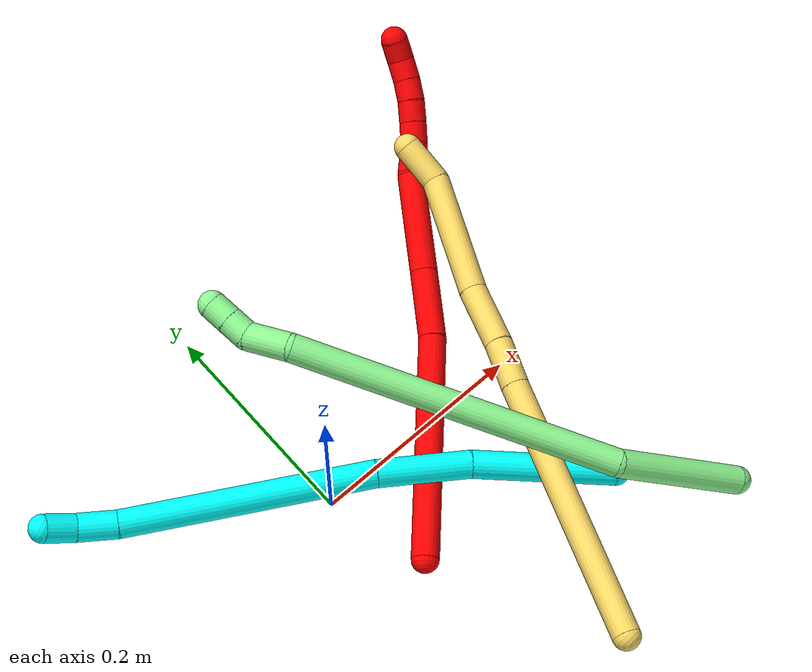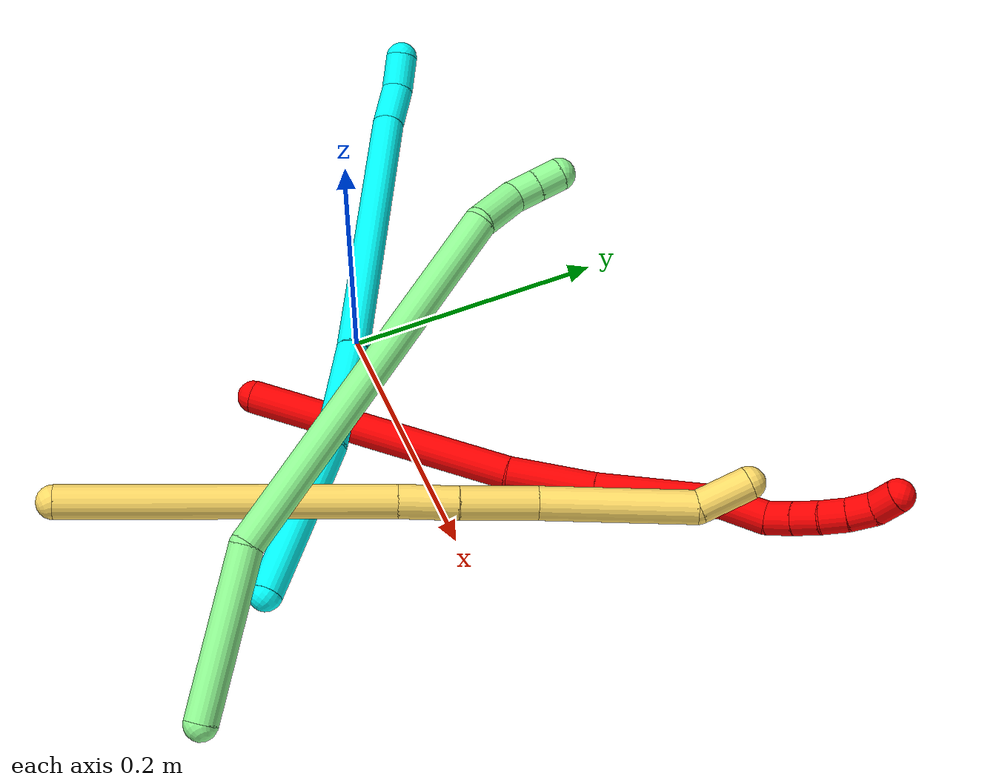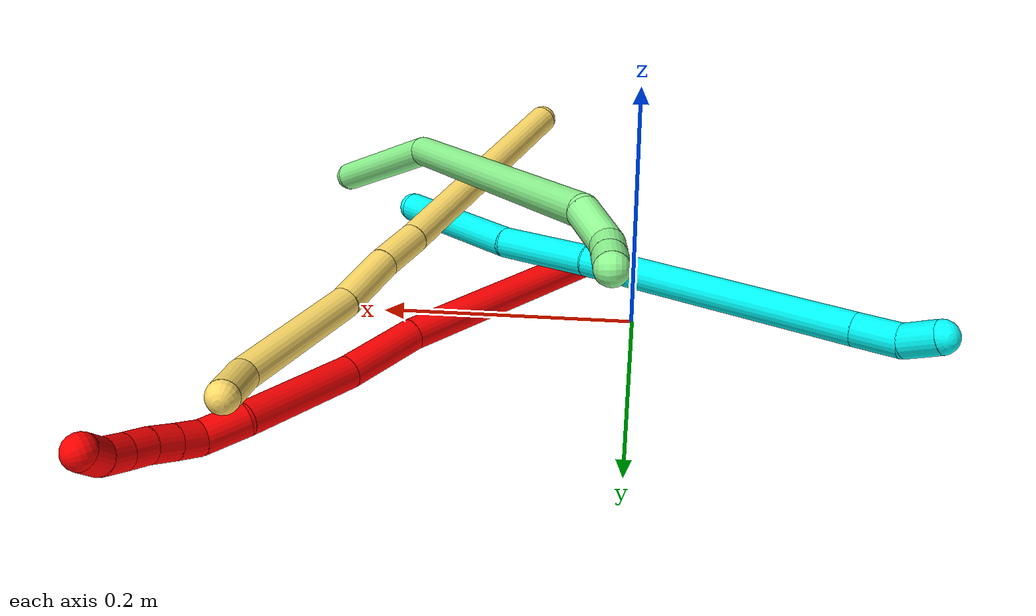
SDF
<sdf version="1.7">
 <world name="default">
  <model name="2">
   <static>0</static>
   <link name="2">
    <collision name="collision-cylinder-e_1_1_4">
     <pose>0.000431 0.000255 0.102914 -0.002482 0.004192 -5e-06</pose>
     <geometry><cylinder><radius>0.0125</radius><length>0.205831</length></cylinder></geometry>
     <surface>
      <friction><ode><mu>1.16</mu><mu2>1.16</mu2><slip1>0</slip1><slip2>0</slip2></ode></friction>
      <contact><ode><kp>1e+06</kp><kd>1</kd><max_vel>0</max_vel><min_depth>0.001</min_depth></ode></contact>
     </surface>
    </collision>
    <visual name="visual-cylinder-e_1_1_4">
     <pose>0.000431 0.000255 0.102914 -0.002482 0.004192 -5e-06</pose>
     <geometry><cylinder><radius>0.0125</radius><length>0.205831</length></cylinder></geometry>
     <material><ambient>1 0 0 1</ambient></material>
    </visual>
    <collision name="collision-cylinder-e_2_4_5">
     <pose>0.005104 0.003269 0.238259 -0.084839 0.129572 -0.005507</pose>
     <geometry><cylinder><radius>0.0125</radius><length>0.065646</length></cylinder></geometry>
     <surface>
      <friction><ode><mu>1.16</mu><mu2>1.16</mu2><slip1>0</slip1><slip2>0</slip2></ode></friction>
      <contact><ode><kp>1e+06</kp><kd>1</kd><max_vel>0</max_vel><min_depth>0.001</min_depth></ode></contact>
     </surface>
    </collision>
    <visual name="visual-cylinder-e_2_4_5">
     <pose>0.005104 0.003269 0.238259 -0.084839 0.129572 -0.005507</pose>
     <geometry><cylinder><radius>0.0125</radius><length>0.065646</length></cylinder></geometry>
     <material><ambient>1 0 0 1</ambient></material>
    </visual>
    <collision name="collision-cylinder-e_3_5_6">
     <pose>0.011664 0.014586 0.317357 -0.181391 0.048834 -0.004442</pose>
     <geometry><cylinder><radius>0.0125</radius><length>0.095005</length></cylinder></geometry>
     <surface>
      <friction><ode><mu>1.16</mu><mu2>1.16</mu2><slip1>0</slip1><slip2>0</slip2></ode></friction>
      <contact><ode><kp>1e+06</kp><kd>1</kd><max_vel>0</max_vel><min_depth>0.001</min_depth></ode></contact>
     </surface>
    </collision>
    <visual name="visual-cylinder-e_3_5_6">
     <pose>0.011664 0.014586 0.317357 -0.181391 0.048834 -0.004442</pose>
     <geometry><cylinder><radius>0.0125</radius><length>0.095005</length></cylinder></geometry>
     <material><ambient>1 0 0 1</ambient></material>
    </visual>
    <collision name="collision-cylinder-e_4_6_7">
     <pose>0.013732 0.022293 0.380685 0.051128 -0.015042 -0.000385</pose>
     <geometry><cylinder><radius>0.0125</radius><length>0.033368</length></cylinder></geometry>
     <surface>
      <friction><ode><mu>1.16</mu><mu2>1.16</mu2><slip1>0</slip1><slip2>0</slip2></ode></friction>
      <contact><ode><kp>1e+06</kp><kd>1</kd><max_vel>0</max_vel><min_depth>0.001</min_depth></ode></contact>
     </surface>
    </collision>
    <visual name="visual-cylinder-e_4_6_7">
     <pose>0.013732 0.022293 0.380685 0.051128 -0.015042 -0.000385</pose>
     <geometry><cylinder><radius>0.0125</radius><length>0.033368</length></cylinder></geometry>
     <material><ambient>1 0 0 1</ambient></material>
    </visual>
    <collision name="collision-cylinder-e_5_7_8">
     <pose>0.011833 0.024399 0.406795 -0.303457 -0.16491 0.025271</pose>
     <geometry><cylinder><radius>0.0125</radius><length>0.020077</length></cylinder></geometry>
     <surface>
      <friction><ode><mu>1.16</mu><mu2>1.16</mu2><slip1>0</slip1><slip2>0</slip2></ode></friction>
      <contact><ode><kp>1e+06</kp><kd>1</kd><max_vel>0</max_vel><min_depth>0.001</min_depth></ode></contact>
     </surface>
    </collision>
    <visual name="visual-cylinder-e_5_7_8">
     <pose>0.011833 0.024399 0.406795 -0.303457 -0.16491 0.025271</pose>
     <geometry><cylinder><radius>0.0125</radius><length>0.020077</length></cylinder></geometry>
     <material><ambient>1 0 0 1</ambient></material>
    </visual>
    <collision name="collision-cylinder-e_6_8_9">
     <pose>0.008439 0.030816 0.425484 -0.358084 -0.175131 0.031774</pose>
     <geometry><cylinder><radius>0.0125</radius><length>0.020037</length></cylinder></geometry>
     <surface>
      <friction><ode><mu>1.16</mu><mu2>1.16</mu2><slip1>0</slip1><slip2>0</slip2></ode></friction>
      <contact><ode><kp>1e+06</kp><kd>1</kd><max_vel>0</max_vel><min_depth>0.001</min_depth></ode></contact>
     </surface>
    </collision>
    <visual name="visual-cylinder-e_6_8_9">
     <pose>0.008439 0.030816 0.425484 -0.358084 -0.175131 0.031774</pose>
     <geometry><cylinder><radius>0.0125</radius><length>0.020037</length></cylinder></geometry>
     <material><ambient>1 0 0 1</ambient></material>
    </visual>
    <collision name="collision-cylinder-e_7_9_10">
     <pose>0.006103 0.038239 0.443903 -0.40782 -0.058995 0.012203</pose>
     <geometry><cylinder><radius>0.0125</radius><length>0.020033</length></cylinder></geometry>
     <surface>
      <friction><ode><mu>1.16</mu><mu2>1.16</mu2><slip1>0</slip1><slip2>0</slip2></ode></friction>
      <contact><ode><kp>1e+06</kp><kd>1</kd><max_vel>0</max_vel><min_depth>0.001</min_depth></ode></contact>
     </surface>
    </collision>
    <visual name="visual-cylinder-e_7_9_10">
     <pose>0.006103 0.038239 0.443903 -0.40782 -0.058995 0.012203</pose>
     <geometry><cylinder><radius>0.0125</radius><length>0.020033</length></cylinder></geometry>
     <material><ambient>1 0 0 1</ambient></material>
    </visual>
    <collision name="collision-cylinder-e_8_10_11">
     <pose>0.004992 0.0473 0.461672 -0.535406 -0.052028 0.014274</pose>
     <geometry><cylinder><radius>0.0125</radius><length>0.020001</length></cylinder></geometry>
     <surface>
      <friction><ode><mu>1.16</mu><mu2>1.16</mu2><slip1>0</slip1><slip2>0</slip2></ode></friction>
      <contact><ode><kp>1e+06</kp><kd>1</kd><max_vel>0</max_vel><min_depth>0.001</min_depth></ode></contact>
     </surface>
    </collision>
    <visual name="visual-cylinder-e_8_10_11">
     <pose>0.004992 0.0473 0.461672 -0.535406 -0.052028 0.014274</pose>
     <geometry><cylinder><radius>0.0125</radius><length>0.020001</length></cylinder></geometry>
     <material><ambient>1 0 0 1</ambient></material>
    </visual>
    <collision name="collision-cylinder-e_9_11_2">
     <pose>0.001824 0.059571 0.476704 -0.839148 -0.268002 0.120122</pose>
     <geometry><cylinder><radius>0.0125</radius><length>0.020002</length></cylinder></geometry>
     <surface>
      <friction><ode><mu>1.16</mu><mu2>1.16</mu2><slip1>0</slip1><slip2>0</slip2></ode></friction>
      <contact><ode><kp>1e+06</kp><kd>1</kd><max_vel>0</max_vel><min_depth>0.001</min_depth></ode></contact>
     </surface>
    </collision>
    <visual name="visual-cylinder-e_9_11_2">
     <pose>0.001824 0.059571 0.476704 -0.839148 -0.268002 0.120122</pose>
     <geometry><cylinder><radius>0.0125</radius><length>0.020002</length></cylinder></geometry>
     <material><ambient>1 0 0 1</ambient></material>
    </visual>
    <collision name="collision-sphere-2">
     <pose>-0.000825 0.066747 0.483147 0 -0 0</pose>
     <geometry><sphere><radius>0.0125</radius></sphere></geometry>
     <surface>
      <friction><ode><mu>1.16</mu><mu2>1.16</mu2><slip1>0</slip1><slip2>0</slip2></ode></friction>
      <contact><ode><kp>1e+06</kp><kd>1</kd><max_vel>0</max_vel><min_depth>0.001</min_depth></ode></contact>
     </surface>
    </collision>
    <visual name="visual-sphere-2">
     <pose>-0.000825 0.066747 0.483147 0 -0 0</pose>
     <geometry><sphere><radius>0.0125</radius></sphere></geometry>
     <material><ambient>1 0 0 1</ambient></material>
    </visual>
    <collision name="collision-sphere-11">
     <pose>0.004472 0.052395 0.470261 0 -0 0</pose>
     <geometry><sphere><radius>0.0125</radius></sphere></geometry>
     <surface>
      <friction><ode><mu>1.16</mu><mu2>1.16</mu2><slip1>0</slip1><slip2>0</slip2></ode></friction>
      <contact><ode><kp>1e+06</kp><kd>1</kd><max_vel>0</max_vel><min_depth>0.001</min_depth></ode></contact>
     </surface>
    </collision>
    <visual name="visual-sphere-11">
     <pose>0.004472 0.052395 0.470261 0 -0 0</pose>
     <geometry><sphere><radius>0.0125</radius></sphere></geometry>
     <material><ambient>1 0 0 1</ambient></material>
    </visual>
    <collision name="collision-sphere-10">
     <pose>0.005512 0.042205 0.453082 0 -0 0</pose>
     <geometry><sphere><radius>0.0125</radius></sphere></geometry>
     <surface>
      <friction><ode><mu>1.16</mu><mu2>1.16</mu2><slip1>0</slip1><slip2>0</slip2></ode></friction>
      <contact><ode><kp>1e+06</kp><kd>1</kd><max_vel>0</max_vel><min_depth>0.001</min_depth></ode></contact>
     </surface>
    </collision>
    <visual name="visual-sphere-10">
     <pose>0.005512 0.042205 0.453082 0 -0 0</pose>
     <geometry><sphere><radius>0.0125</radius></sphere></geometry>
     <material><ambient>1 0 0 1</ambient></material>
    </visual>
    <collision name="collision-sphere-9">
     <pose>0.006694 0.034273 0.434724 0 -0 0</pose>
     <geometry><sphere><radius>0.0125</radius></sphere></geometry>
     <surface>
      <friction><ode><mu>1.16</mu><mu2>1.16</mu2><slip1>0</slip1><slip2>0</slip2></ode></friction>
      <contact><ode><kp>1e+06</kp><kd>1</kd><max_vel>0</max_vel><min_depth>0.001</min_depth></ode></contact>
     </surface>
    </collision>
    <visual name="visual-sphere-9">
     <pose>0.006694 0.034273 0.434724 0 -0 0</pose>
     <geometry><sphere><radius>0.0125</radius></sphere></geometry>
     <material><ambient>1 0 0 1</ambient></material>
    </visual>
    <collision name="collision-sphere-4">
     <pose>0.000863 0.000511 0.205829 0 -0 0</pose>
     <geometry><sphere><radius>0.0125</radius></sphere></geometry>
     <surface>
      <friction><ode><mu>1.16</mu><mu2>1.16</mu2><slip1>0</slip1><slip2>0</slip2></ode></friction>
      <contact><ode><kp>1e+06</kp><kd>1</kd><max_vel>0</max_vel><min_depth>0.001</min_depth></ode></contact>
     </surface>
    </collision>
    <visual name="visual-sphere-4">
     <pose>0.000863 0.000511 0.205829 0 -0 0</pose>
     <geometry><sphere><radius>0.0125</radius></sphere></geometry>
     <material><ambient>1 0 0 1</ambient></material>
    </visual>
    <collision name="collision-sphere-1">
     <geometry><sphere><radius>0.0125</radius></sphere></geometry>
     <surface>
      <friction><ode><mu>1.16</mu><mu2>1.16</mu2><slip1>0</slip1><slip2>0</slip2></ode></friction>
      <contact><ode><kp>1e+06</kp><kd>1</kd><max_vel>0</max_vel><min_depth>0.001</min_depth></ode></contact>
     </surface>
    </collision>
    <visual name="visual-sphere-1">
     <geometry><sphere><radius>0.0125</radius></sphere></geometry>
     <material><ambient>1 0 0 1</ambient></material>
    </visual>
    <collision name="collision-sphere-8">
     <pose>0.010185 0.027358 0.416245 0 -0 0</pose>
     <geometry><sphere><radius>0.0125</radius></sphere></geometry>
     <surface>
      <friction><ode><mu>1.16</mu><mu2>1.16</mu2><slip1>0</slip1><slip2>0</slip2></ode></friction>
      <contact><ode><kp>1e+06</kp><kd>1</kd><max_vel>0</max_vel><min_depth>0.001</min_depth></ode></contact>
     </surface>
    </collision>
    <visual name="visual-sphere-8">
     <pose>0.010185 0.027358 0.416245 0 -0 0</pose>
     <geometry><sphere><radius>0.0125</radius></sphere></geometry>
     <material><ambient>1 0 0 1</ambient></material>
    </visual>
    <collision name="collision-sphere-5">
     <pose>0.009345 0.006027 0.27069 0 -0 0</pose>
     <geometry><sphere><radius>0.0125</radius></sphere></geometry>
     <surface>
      <friction><ode><mu>1.16</mu><mu2>1.16</mu2><slip1>0</slip1><slip2>0</slip2></ode></friction>
      <contact><ode><kp>1e+06</kp><kd>1</kd><max_vel>0</max_vel><min_depth>0.001</min_depth></ode></contact>
     </surface>
    </collision>
    <visual name="visual-sphere-5">
     <pose>0.009345 0.006027 0.27069 0 -0 0</pose>
     <geometry><sphere><radius>0.0125</radius></sphere></geometry>
     <material><ambient>1 0 0 1</ambient></material>
    </visual>
    <collision name="collision-sphere-6">
     <pose>0.013983 0.023145 0.364025 0 -0 0</pose>
     <geometry><sphere><radius>0.0125</radius></sphere></geometry>
     <surface>
      <friction><ode><mu>1.16</mu><mu2>1.16</mu2><slip1>0</slip1><slip2>0</slip2></ode></friction>
      <contact><ode><kp>1e+06</kp><kd>1</kd><max_vel>0</max_vel><min_depth>0.001</min_depth></ode></contact>
     </surface>
    </collision>
    <visual name="visual-sphere-6">
     <pose>0.013983 0.023145 0.364025 0 -0 0</pose>
     <geometry><sphere><radius>0.0125</radius></sphere></geometry>
     <material><ambient>1 0 0 1</ambient></material>
    </visual>
    <collision name="collision-sphere-7">
     <pose>0.013481 0.02144 0.397345 0 -0 0</pose>
     <geometry><sphere><radius>0.0125</radius></sphere></geometry>
     <surface>
      <friction><ode><mu>1.16</mu><mu2>1.16</mu2><slip1>0</slip1><slip2>0</slip2></ode></friction>
      <contact><ode><kp>1e+06</kp><kd>1</kd><max_vel>0</max_vel><min_depth>0.001</min_depth></ode></contact>
     </surface>
    </collision>
    <visual name="visual-sphere-7">
     <pose>0.013481 0.02144 0.397345 0 -0 0</pose>
     <geometry><sphere><radius>0.0125</radius></sphere></geometry>
     <material><ambient>1 0 0 1</ambient></material>
    </visual>
    <inertial>
     <pose>0.005311 0.012815 0.248063 0 -0 0</pose>
     <mass>0.5</mass>
     <inertia><ixx>0.000847</ixx><ixy>0</ixy><ixz>0</ixz><iyy>0.00085</iyy><iyz>0</iyz><izz>8e-06</izz></inertia>
    </inertial>
   </link>
   <pose>0.026137 -0.09378 0.011479 1.55837 0.786395 2.37036</pose>
  </model>
  <model name="3">
   <static>0</static>
   <link name="3">
    <collision name="collision-cylinder-e_1_1_4">
     <pose>-0.021679 -0.021175 0.056067 0.361109 -0.347083 -0.063979</pose>
     <geometry><cylinder><radius>0.0125</radius><length>0.127466</length></cylinder></geometry>
     <surface>
      <friction><ode><mu>1.16</mu><mu2>1.16</mu2><slip1>0</slip1><slip2>0</slip2></ode></friction>
      <contact><ode><kp>1e+06</kp><kd>1</kd><max_vel>0</max_vel><min_depth>0.001</min_depth></ode></contact>
     </surface>
    </collision>
    <visual name="visual-cylinder-e_1_1_4">
     <pose>-0.021679 -0.021175 0.056067 0.361109 -0.347083 -0.063979</pose>
     <geometry><cylinder><radius>0.0125</radius><length>0.127466</length></cylinder></geometry>
     <material><ambient>0.003922 1 0.996078 1</ambient></material>
    </visual>
    <collision name="collision-cylinder-e_2_4_5">
     <pose>-0.056629 -0.06263 0.146407 0.534316 -0.321667 -0.088749</pose>
     <geometry><cylinder><radius>0.0125</radius><length>0.083952</length></cylinder></geometry>
     <surface>
      <friction><ode><mu>1.16</mu><mu2>1.16</mu2><slip1>0</slip1><slip2>0</slip2></ode></friction>
      <contact><ode><kp>1e+06</kp><kd>1</kd><max_vel>0</max_vel><min_depth>0.001</min_depth></ode></contact>
     </surface>
    </collision>
    <visual name="visual-cylinder-e_2_4_5">
     <pose>-0.056629 -0.06263 0.146407 0.534316 -0.321667 -0.088749</pose>
     <geometry><cylinder><radius>0.0125</radius><length>0.083952</length></cylinder></geometry>
     <material><ambient>0.003922 1 0.996078 1</ambient></material>
    </visual>
    <collision name="collision-cylinder-e_3_5_6">
     <pose>-0.112261 -0.142889 0.265103 0.61771 -0.388282 -0.125303</pose>
     <geometry><cylinder><radius>0.0125</radius><length>0.223781</length></cylinder></geometry>
     <surface>
      <friction><ode><mu>1.16</mu><mu2>1.16</mu2><slip1>0</slip1><slip2>0</slip2></ode></friction>
      <contact><ode><kp>1e+06</kp><kd>1</kd><max_vel>0</max_vel><min_depth>0.001</min_depth></ode></contact>
     </surface>
    </collision>
    <visual name="visual-cylinder-e_3_5_6">
     <pose>-0.112261 -0.142889 0.265103 0.61771 -0.388282 -0.125303</pose>
     <geometry><cylinder><radius>0.0125</radius><length>0.223781</length></cylinder></geometry>
     <material><ambient>0.003922 1 0.996078 1</ambient></material>
    </visual>
    <collision name="collision-cylinder-e_4_6_7">
     <pose>-0.160376 -0.211166 0.364331 0.510849 -0.326844 -0.086063</pose>
     <geometry><cylinder><radius>0.0125</radius><length>0.035837</length></cylinder></geometry>
     <surface>
      <friction><ode><mu>1.16</mu><mu2>1.16</mu2><slip1>0</slip1><slip2>0</slip2></ode></friction>
      <contact><ode><kp>1e+06</kp><kd>1</kd><max_vel>0</max_vel><min_depth>0.001</min_depth></ode></contact>
     </surface>
    </collision>
    <visual name="visual-cylinder-e_4_6_7">
     <pose>-0.160376 -0.211166 0.364331 0.510849 -0.326844 -0.086063</pose>
     <geometry><cylinder><radius>0.0125</radius><length>0.035837</length></cylinder></geometry>
     <material><ambient>0.003922 1 0.996078 1</ambient></material>
    </visual>
    <collision name="collision-cylinder-e_5_7_2">
     <pose>-0.165968 -0.227015 0.39149 0.54865 0.011079 0.003118</pose>
     <geometry><cylinder><radius>0.0125</radius><length>0.028964</length></cylinder></geometry>
     <surface>
      <friction><ode><mu>1.16</mu><mu2>1.16</mu2><slip1>0</slip1><slip2>0</slip2></ode></friction>
      <contact><ode><kp>1e+06</kp><kd>1</kd><max_vel>0</max_vel><min_depth>0.001</min_depth></ode></contact>
     </surface>
    </collision>
    <visual name="visual-cylinder-e_5_7_2">
     <pose>-0.165968 -0.227015 0.39149 0.54865 0.011079 0.003118</pose>
     <geometry><cylinder><radius>0.0125</radius><length>0.028964</length></cylinder></geometry>
     <material><ambient>0.003922 1 0.996078 1</ambient></material>
    </visual>
    <collision name="collision-sphere-2">
     <pose>-0.165808 -0.234568 0.403845 0 -0 0</pose>
     <geometry><sphere><radius>0.0125</radius></sphere></geometry>
     <surface>
      <friction><ode><mu>1.16</mu><mu2>1.16</mu2><slip1>0</slip1><slip2>0</slip2></ode></friction>
      <contact><ode><kp>1e+06</kp><kd>1</kd><max_vel>0</max_vel><min_depth>0.001</min_depth></ode></contact>
     </surface>
    </collision>
    <visual name="visual-sphere-2">
     <pose>-0.165808 -0.234568 0.403845 0 -0 0</pose>
     <geometry><sphere><radius>0.0125</radius></sphere></geometry>
     <material><ambient>0.003922 1 0.996078 1</ambient></material>
    </visual>
    <collision name="collision-sphere-7">
     <pose>-0.166129 -0.219463 0.379134 0 -0 0</pose>
     <geometry><sphere><radius>0.0125</radius></sphere></geometry>
     <surface>
      <friction><ode><mu>1.16</mu><mu2>1.16</mu2><slip1>0</slip1><slip2>0</slip2></ode></friction>
      <contact><ode><kp>1e+06</kp><kd>1</kd><max_vel>0</max_vel><min_depth>0.001</min_depth></ode></contact>
     </surface>
    </collision>
    <visual name="visual-sphere-7">
     <pose>-0.166129 -0.219463 0.379134 0 -0 0</pose>
     <geometry><sphere><radius>0.0125</radius></sphere></geometry>
     <material><ambient>0.003922 1 0.996078 1</ambient></material>
    </visual>
    <collision name="collision-sphere-6">
     <pose>-0.154623 -0.202869 0.349527 0 -0 0</pose>
     <geometry><sphere><radius>0.0125</radius></sphere></geometry>
     <surface>
      <friction><ode><mu>1.16</mu><mu2>1.16</mu2><slip1>0</slip1><slip2>0</slip2></ode></friction>
      <contact><ode><kp>1e+06</kp><kd>1</kd><max_vel>0</max_vel><min_depth>0.001</min_depth></ode></contact>
     </surface>
    </collision>
    <visual name="visual-sphere-6">
     <pose>-0.154623 -0.202869 0.349527 0 -0 0</pose>
     <geometry><sphere><radius>0.0125</radius></sphere></geometry>
     <material><ambient>0.003922 1 0.996078 1</ambient></material>
    </visual>
    <collision name="collision-sphere-5">
     <pose>-0.0699 -0.08291 0.180679 0 -0 0</pose>
     <geometry><sphere><radius>0.0125</radius></sphere></geometry>
     <surface>
      <friction><ode><mu>1.16</mu><mu2>1.16</mu2><slip1>0</slip1><slip2>0</slip2></ode></friction>
      <contact><ode><kp>1e+06</kp><kd>1</kd><max_vel>0</max_vel><min_depth>0.001</min_depth></ode></contact>
     </surface>
    </collision>
    <visual name="visual-sphere-5">
     <pose>-0.0699 -0.08291 0.180679 0 -0 0</pose>
     <geometry><sphere><radius>0.0125</radius></sphere></geometry>
     <material><ambient>0.003922 1 0.996078 1</ambient></material>
    </visual>
    <collision name="collision-sphere-1">
     <geometry><sphere><radius>0.0125</radius></sphere></geometry>
     <surface>
      <friction><ode><mu>1.16</mu><mu2>1.16</mu2><slip1>0</slip1><slip2>0</slip2></ode></friction>
      <contact><ode><kp>1e+06</kp><kd>1</kd><max_vel>0</max_vel><min_depth>0.001</min_depth></ode></contact>
     </surface>
    </collision>
    <visual name="visual-sphere-1">
     <geometry><sphere><radius>0.0125</radius></sphere></geometry>
     <material><ambient>0.003922 1 0.996078 1</ambient></material>
    </visual>
    <collision name="collision-sphere-4">
     <pose>-0.043358 -0.04235 0.112135 0 -0 0</pose>
     <geometry><sphere><radius>0.0125</radius></sphere></geometry>
     <surface>
      <friction><ode><mu>1.16</mu><mu2>1.16</mu2><slip1>0</slip1><slip2>0</slip2></ode></friction>
      <contact><ode><kp>1e+06</kp><kd>1</kd><max_vel>0</max_vel><min_depth>0.001</min_depth></ode></contact>
     </surface>
    </collision>
    <visual name="visual-sphere-4">
     <pose>-0.043358 -0.04235 0.112135 0 -0 0</pose>
     <geometry><sphere><radius>0.0125</radius></sphere></geometry>
     <material><ambient>0.003922 1 0.996078 1</ambient></material>
    </visual>
    <inertial>
     <pose>-0.086388 -0.108151 0.206317 0 -0 0</pose>
     <mass>0.5</mass>
     <inertia>
      <ixx>0.000953</ixx>
      <ixy>0</ixy>
      <ixz>0</ixz>
      <iyy>0.000866</iyy>
      <iyz>0</iyz>
      <izz>0.001061</izz>
     </inertia>
    </inertial>
   </link>
   <pose>0.20177 -0.146166 0.021624 -0.418512 -1.11833 -0.682358</pose>
  </model>
  <model name="5">
   <static>0</static>
   <link name="5">
    <collision name="collision-cylinder-e_1_1_4">
     <pose>0.004488 0.050038 -0.110942 -2.71788 0.036861 -0.170981</pose>
     <geometry><cylinder><radius>0.0125</radius><length>0.243575</length></cylinder></geometry>
     <surface>
      <friction><ode><mu>1.16</mu><mu2>1.16</mu2><slip1>0</slip1><slip2>0</slip2></ode></friction>
      <contact><ode><kp>1e+06</kp><kd>1</kd><max_vel>0</max_vel><min_depth>0.001</min_depth></ode></contact>
     </surface>
    </collision>
    <visual name="visual-cylinder-e_1_1_4">
     <pose>0.004488 0.050038 -0.110942 -2.71788 0.036861 -0.170981</pose>
     <geometry><cylinder><radius>0.0125</radius><length>0.243575</length></cylinder></geometry>
     <material><ambient>1 0.858824 0.4 1</ambient></material>
    </visual>
    <collision name="collision-cylinder-e_2_4_5">
     <pose>0.009375 0.109848 -0.241418 -2.67776 0.018262 -0.077291</pose>
     <geometry><cylinder><radius>0.0125</radius><length>0.043689</length></cylinder></geometry>
     <surface>
      <friction><ode><mu>1.16</mu><mu2>1.16</mu2><slip1>0</slip1><slip2>0</slip2></ode></friction>
      <contact><ode><kp>1e+06</kp><kd>1</kd><max_vel>0</max_vel><min_depth>0.001</min_depth></ode></contact>
     </surface>
    </collision>
    <visual name="visual-cylinder-e_2_4_5">
     <pose>0.009375 0.109848 -0.241418 -2.67776 0.018262 -0.077291</pose>
     <geometry><cylinder><radius>0.0125</radius><length>0.043689</length></cylinder></geometry>
     <material><ambient>1 0.858824 0.4 1</ambient></material>
    </visual>
    <collision name="collision-cylinder-e_3_5_6">
     <pose>0.011962 0.131052 -0.287165 -2.73032 0.076369 -0.362296</pose>
     <geometry><cylinder><radius>0.0125</radius><length>0.057366</length></cylinder></geometry>
     <surface>
      <friction><ode><mu>1.16</mu><mu2>1.16</mu2><slip1>0</slip1><slip2>0</slip2></ode></friction>
      <contact><ode><kp>1e+06</kp><kd>1</kd><max_vel>0</max_vel><min_depth>0.001</min_depth></ode></contact>
     </surface>
    </collision>
    <visual name="visual-cylinder-e_3_5_6">
     <pose>0.011962 0.131052 -0.287165 -2.73032 0.076369 -0.362296</pose>
     <geometry><cylinder><radius>0.0125</radius><length>0.057366</length></cylinder></geometry>
     <material><ambient>1 0.858824 0.4 1</ambient></material>
    </visual>
    <collision name="collision-cylinder-e_4_6_7">
     <pose>0.0117 0.169002 -0.364267 -2.66121 -0.042694 0.173904</pose>
     <geometry><cylinder><radius>0.0125</radius><length>0.114867</length></cylinder></geometry>
     <surface>
      <friction><ode><mu>1.16</mu><mu2>1.16</mu2><slip1>0</slip1><slip2>0</slip2></ode></friction>
      <contact><ode><kp>1e+06</kp><kd>1</kd><max_vel>0</max_vel><min_depth>0.001</min_depth></ode></contact>
     </surface>
    </collision>
    <visual name="visual-cylinder-e_4_6_7">
     <pose>0.0117 0.169002 -0.364267 -2.66121 -0.042694 0.173904</pose>
     <geometry><cylinder><radius>0.0125</radius><length>0.114867</length></cylinder></geometry>
     <material><ambient>1 0.858824 0.4 1</ambient></material>
    </visual>
    <collision name="collision-cylinder-e_5_7_2">
     <pose>0.006339 0.195936 -0.435191 -3.12081 -0.144158 2.85572</pose>
     <geometry><cylinder><radius>0.0125</radius><length>0.040504</length></cylinder></geometry>
     <surface>
      <friction><ode><mu>1.16</mu><mu2>1.16</mu2><slip1>0</slip1><slip2>0</slip2></ode></friction>
      <contact><ode><kp>1e+06</kp><kd>1</kd><max_vel>0</max_vel><min_depth>0.001</min_depth></ode></contact>
     </surface>
    </collision>
    <visual name="visual-cylinder-e_5_7_2">
     <pose>0.006339 0.195936 -0.435191 -3.12081 -0.144158 2.85572</pose>
     <geometry><cylinder><radius>0.0125</radius><length>0.040504</length></cylinder></geometry>
     <material><ambient>1 0.858824 0.4 1</ambient></material>
    </visual>
    <collision name="collision-sphere-2">
     <pose>0.00343 0.196352 -0.455228 0 -0 0</pose>
     <geometry><sphere><radius>0.0125</radius></sphere></geometry>
     <surface>
      <friction><ode><mu>1.16</mu><mu2>1.16</mu2><slip1>0</slip1><slip2>0</slip2></ode></friction>
      <contact><ode><kp>1e+06</kp><kd>1</kd><max_vel>0</max_vel><min_depth>0.001</min_depth></ode></contact>
     </surface>
    </collision>
    <visual name="visual-sphere-2">
     <pose>0.00343 0.196352 -0.455228 0 -0 0</pose>
     <geometry><sphere><radius>0.0125</radius></sphere></geometry>
     <material><ambient>1 0.858824 0.4 1</ambient></material>
    </visual>
    <collision name="collision-sphere-7">
     <pose>0.009248 0.195519 -0.415153 0 -0 0</pose>
     <geometry><sphere><radius>0.0125</radius></sphere></geometry>
     <surface>
      <friction><ode><mu>1.16</mu><mu2>1.16</mu2><slip1>0</slip1><slip2>0</slip2></ode></friction>
      <contact><ode><kp>1e+06</kp><kd>1</kd><max_vel>0</max_vel><min_depth>0.001</min_depth></ode></contact>
     </surface>
    </collision>
    <visual name="visual-sphere-7">
     <pose>0.009248 0.195519 -0.415153 0 -0 0</pose>
     <geometry><sphere><radius>0.0125</radius></sphere></geometry>
     <material><ambient>1 0.858824 0.4 1</ambient></material>
    </visual>
    <collision name="collision-sphere-6">
     <pose>0.014151 0.142485 -0.31338 0 -0 0</pose>
     <geometry><sphere><radius>0.0125</radius></sphere></geometry>
     <surface>
      <friction><ode><mu>1.16</mu><mu2>1.16</mu2><slip1>0</slip1><slip2>0</slip2></ode></friction>
      <contact><ode><kp>1e+06</kp><kd>1</kd><max_vel>0</max_vel><min_depth>0.001</min_depth></ode></contact>
     </surface>
    </collision>
    <visual name="visual-sphere-6">
     <pose>0.014151 0.142485 -0.31338 0 -0 0</pose>
     <geometry><sphere><radius>0.0125</radius></sphere></geometry>
     <material><ambient>1 0.858824 0.4 1</ambient></material>
    </visual>
    <collision name="collision-sphere-5">
     <pose>0.009774 0.119619 -0.260951 0 -0 0</pose>
     <geometry><sphere><radius>0.0125</radius></sphere></geometry>
     <surface>
      <friction><ode><mu>1.16</mu><mu2>1.16</mu2><slip1>0</slip1><slip2>0</slip2></ode></friction>
      <contact><ode><kp>1e+06</kp><kd>1</kd><max_vel>0</max_vel><min_depth>0.001</min_depth></ode></contact>
     </surface>
    </collision>
    <visual name="visual-sphere-5">
     <pose>0.009774 0.119619 -0.260951 0 -0 0</pose>
     <geometry><sphere><radius>0.0125</radius></sphere></geometry>
     <material><ambient>1 0.858824 0.4 1</ambient></material>
    </visual>
    <collision name="collision-sphere-1">
     <geometry><sphere><radius>0.0125</radius></sphere></geometry>
     <surface>
      <friction><ode><mu>1.16</mu><mu2>1.16</mu2><slip1>0</slip1><slip2>0</slip2></ode></friction>
      <contact><ode><kp>1e+06</kp><kd>1</kd><max_vel>0</max_vel><min_depth>0.001</min_depth></ode></contact>
     </surface>
    </collision>
    <visual name="visual-sphere-1">
     <geometry><sphere><radius>0.0125</radius></sphere></geometry>
     <material><ambient>1 0.858824 0.4 1</ambient></material>
    </visual>
    <collision name="collision-sphere-4">
     <pose>0.008976 0.100077 -0.221884 0 -0 0</pose>
     <geometry><sphere><radius>0.0125</radius></sphere></geometry>
     <surface>
      <friction><ode><mu>1.16</mu><mu2>1.16</mu2><slip1>0</slip1><slip2>0</slip2></ode></friction>
      <contact><ode><kp>1e+06</kp><kd>1</kd><max_vel>0</max_vel><min_depth>0.001</min_depth></ode></contact>
     </surface>
    </collision>
    <visual name="visual-sphere-4">
     <pose>0.008976 0.100077 -0.221884 0 -0 0</pose>
     <geometry><sphere><radius>0.0125</radius></sphere></geometry>
     <material><ambient>1 0.858824 0.4 1</ambient></material>
    </visual>
    <inertial>
     <pose>0.007579 0.103708 -0.227025 0 -0 0</pose>
     <mass>0.5</mass>
     <inertia>
      <ixx>0.001154</ixx>
      <ixy>0</ixy>
      <ixz>0</ixz>
      <iyy>-0.001391</iyy>
      <iyz>0</iyz>
      <izz>-0.000645</izz>
     </inertia>
    </inertial>
   </link>
   <pose>0.096452 -0.264328 0.06295 -1.89374 1.30361 2.87114</pose>
  </model>
  <model name="13">
   <static>0</static>
   <link name="13">
    <collision name="collision-cylinder-e_1_1_4">
     <pose>-0.038601 0.014481 -0.046743 -2.84117 -0.667891 2.31887</pose>
     <geometry><cylinder><radius>0.0125</radius><length>0.124654</length></cylinder></geometry>
     <surface>
      <friction><ode><mu>1.16</mu><mu2>1.16</mu2><slip1>0</slip1><slip2>0</slip2></ode></friction>
      <contact><ode><kp>1e+06</kp><kd>1</kd><max_vel>0</max_vel><min_depth>0.001</min_depth></ode></contact>
     </surface>
    </collision>
    <visual name="visual-cylinder-e_1_1_4">
     <pose>-0.038601 0.014481 -0.046743 -2.84117 -0.667891 2.31887</pose>
     <geometry><cylinder><radius>0.0125</radius><length>0.124654</length></cylinder></geometry>
     <material><ambient>0.564706 0.984314 0.572549 1</ambient></material>
    </visual>
    <collision name="collision-cylinder-e_2_4_5">
     <pose>-0.159738 0.116366 -0.178996 -2.34525 -0.593751 1.25758</pose>
     <geometry><cylinder><radius>0.0125</radius><length>0.295049</length></cylinder></geometry>
     <surface>
      <friction><ode><mu>1.16</mu><mu2>1.16</mu2><slip1>0</slip1><slip2>0</slip2></ode></friction>
      <contact><ode><kp>1e+06</kp><kd>1</kd><max_vel>0</max_vel><min_depth>0.001</min_depth></ode></contact>
     </surface>
    </collision>
    <visual name="visual-cylinder-e_2_4_5">
     <pose>-0.159738 0.116366 -0.178996 -2.34525 -0.593751 1.25758</pose>
     <geometry><cylinder><radius>0.0125</radius><length>0.295049</length></cylinder></geometry>
     <material><ambient>0.564706 0.984314 0.572549 1</ambient></material>
    </visual>
    <collision name="collision-cylinder-e_3_5_6">
     <pose>-0.247029 0.220438 -0.274296 -2.10181 -0.241175 0.417223</pose>
     <geometry><cylinder><radius>0.0125</radius><length>0.039816</length></cylinder></geometry>
     <surface>
      <friction><ode><mu>1.16</mu><mu2>1.16</mu2><slip1>0</slip1><slip2>0</slip2></ode></friction>
      <contact><ode><kp>1e+06</kp><kd>1</kd><max_vel>0</max_vel><min_depth>0.001</min_depth></ode></contact>
     </surface>
    </collision>
    <visual name="visual-cylinder-e_3_5_6">
     <pose>-0.247029 0.220438 -0.274296 -2.10181 -0.241175 0.417223</pose>
     <geometry><cylinder><radius>0.0125</radius><length>0.039816</length></cylinder></geometry>
     <material><ambient>0.564706 0.984314 0.572549 1</ambient></material>
    </visual>
    <collision name="collision-cylinder-e_4_6_7">
     <pose>-0.257535 0.245237 -0.285768 -1.77487 -0.605838 0.733</pose>
     <geometry><cylinder><radius>0.0125</radius><length>0.020196</length></cylinder></geometry>
     <surface>
      <friction><ode><mu>1.16</mu><mu2>1.16</mu2><slip1>0</slip1><slip2>0</slip2></ode></friction>
      <contact><ode><kp>1e+06</kp><kd>1</kd><max_vel>0</max_vel><min_depth>0.001</min_depth></ode></contact>
     </surface>
    </collision>
    <visual name="visual-cylinder-e_4_6_7">
     <pose>-0.257535 0.245237 -0.285768 -1.77487 -0.605838 0.733</pose>
     <geometry><cylinder><radius>0.0125</radius><length>0.020196</length></cylinder></geometry>
     <material><ambient>0.564706 0.984314 0.572549 1</ambient></material>
    </visual>
    <collision name="collision-cylinder-e_5_7_2">
     <pose>-0.269126 0.261495 -0.289078 -1.7684 -0.61371 0.737788</pose>
     <geometry><cylinder><radius>0.0125</radius><length>0.020285</length></cylinder></geometry>
     <surface>
      <friction><ode><mu>1.16</mu><mu2>1.16</mu2><slip1>0</slip1><slip2>0</slip2></ode></friction>
      <contact><ode><kp>1e+06</kp><kd>1</kd><max_vel>0</max_vel><min_depth>0.001</min_depth></ode></contact>
     </surface>
    </collision>
    <visual name="visual-cylinder-e_5_7_2">
     <pose>-0.269126 0.261495 -0.289078 -1.7684 -0.61371 0.737788</pose>
     <geometry><cylinder><radius>0.0125</radius><length>0.020285</length></cylinder></geometry>
     <material><ambient>0.564706 0.984314 0.572549 1</ambient></material>
    </visual>
    <collision name="collision-sphere-2">
     <pose>-0.274967 0.269626 -0.290706 0 -0 0</pose>
     <geometry><sphere><radius>0.0125</radius></sphere></geometry>
     <surface>
      <friction><ode><mu>1.16</mu><mu2>1.16</mu2><slip1>0</slip1><slip2>0</slip2></ode></friction>
      <contact><ode><kp>1e+06</kp><kd>1</kd><max_vel>0</max_vel><min_depth>0.001</min_depth></ode></contact>
     </surface>
    </collision>
    <visual name="visual-sphere-2">
     <pose>-0.274967 0.269626 -0.290706 0 -0 0</pose>
     <geometry><sphere><radius>0.0125</radius></sphere></geometry>
     <material><ambient>0.564706 0.984314 0.572549 1</ambient></material>
    </visual>
    <collision name="collision-sphere-7">
     <pose>-0.263285 0.253365 -0.28745 0 -0 0</pose>
     <geometry><sphere><radius>0.0125</radius></sphere></geometry>
     <surface>
      <friction><ode><mu>1.16</mu><mu2>1.16</mu2><slip1>0</slip1><slip2>0</slip2></ode></friction>
      <contact><ode><kp>1e+06</kp><kd>1</kd><max_vel>0</max_vel><min_depth>0.001</min_depth></ode></contact>
     </surface>
    </collision>
    <visual name="visual-sphere-7">
     <pose>-0.263285 0.253365 -0.28745 0 -0 0</pose>
     <geometry><sphere><radius>0.0125</radius></sphere></geometry>
     <material><ambient>0.564706 0.984314 0.572549 1</ambient></material>
    </visual>
    <collision name="collision-sphere-6">
     <pose>-0.251784 0.237108 -0.284086 0 -0 0</pose>
     <geometry><sphere><radius>0.0125</radius></sphere></geometry>
     <surface>
      <friction><ode><mu>1.16</mu><mu2>1.16</mu2><slip1>0</slip1><slip2>0</slip2></ode></friction>
      <contact><ode><kp>1e+06</kp><kd>1</kd><max_vel>0</max_vel><min_depth>0.001</min_depth></ode></contact>
     </surface>
    </collision>
    <visual name="visual-sphere-6">
     <pose>-0.251784 0.237108 -0.284086 0 -0 0</pose>
     <geometry><sphere><radius>0.0125</radius></sphere></geometry>
     <material><ambient>0.564706 0.984314 0.572549 1</ambient></material>
    </visual>
    <collision name="collision-sphere-5">
     <pose>-0.242275 0.203769 -0.264506 0 -0 0</pose>
     <geometry><sphere><radius>0.0125</radius></sphere></geometry>
     <surface>
      <friction><ode><mu>1.16</mu><mu2>1.16</mu2><slip1>0</slip1><slip2>0</slip2></ode></friction>
      <contact><ode><kp>1e+06</kp><kd>1</kd><max_vel>0</max_vel><min_depth>0.001</min_depth></ode></contact>
     </surface>
    </collision>
    <visual name="visual-sphere-5">
     <pose>-0.242275 0.203769 -0.264506 0 -0 0</pose>
     <geometry><sphere><radius>0.0125</radius></sphere></geometry>
     <material><ambient>0.564706 0.984314 0.572549 1</ambient></material>
    </visual>
    <collision name="collision-sphere-1">
     <geometry><sphere><radius>0.0125</radius></sphere></geometry>
     <surface>
      <friction><ode><mu>1.16</mu><mu2>1.16</mu2><slip1>0</slip1><slip2>0</slip2></ode></friction>
      <contact><ode><kp>1e+06</kp><kd>1</kd><max_vel>0</max_vel><min_depth>0.001</min_depth></ode></contact>
     </surface>
    </collision>
    <visual name="visual-sphere-1">
     <geometry><sphere><radius>0.0125</radius></sphere></geometry>
     <material><ambient>0.564706 0.984314 0.572549 1</ambient></material>
    </visual>
    <collision name="collision-sphere-4">
     <pose>-0.077202 0.028962 -0.093486 0 -0 0</pose>
     <geometry><sphere><radius>0.0125</radius></sphere></geometry>
     <surface>
      <friction><ode><mu>1.16</mu><mu2>1.16</mu2><slip1>0</slip1><slip2>0</slip2></ode></friction>
      <contact><ode><kp>1e+06</kp><kd>1</kd><max_vel>0</max_vel><min_depth>0.001</min_depth></ode></contact>
     </surface>
    </collision>
    <visual name="visual-sphere-4">
     <pose>-0.077202 0.028962 -0.093486 0 -0 0</pose>
     <geometry><sphere><radius>0.0125</radius></sphere></geometry>
     <material><ambient>0.564706 0.984314 0.572549 1</ambient></material>
    </visual>
    <inertial>
     <pose>-0.144877 0.110346 -0.162392 0 -0 0</pose>
     <mass>0.5</mass>
     <inertia>
      <ixx>0.002244</ixx>
      <ixy>0</ixy>
      <ixz>0</ixz>
      <iyy>0.002301</iyy>
      <iyz>0</iyz>
      <izz>-3.4e-05</izz>
     </inertia>
    </inertial>
   </link>
   <pose>0.277594 -0.220493 0.014918 -1.7471 1.02411 -1.7633</pose>
  </model>
 </world>
</sdf>
